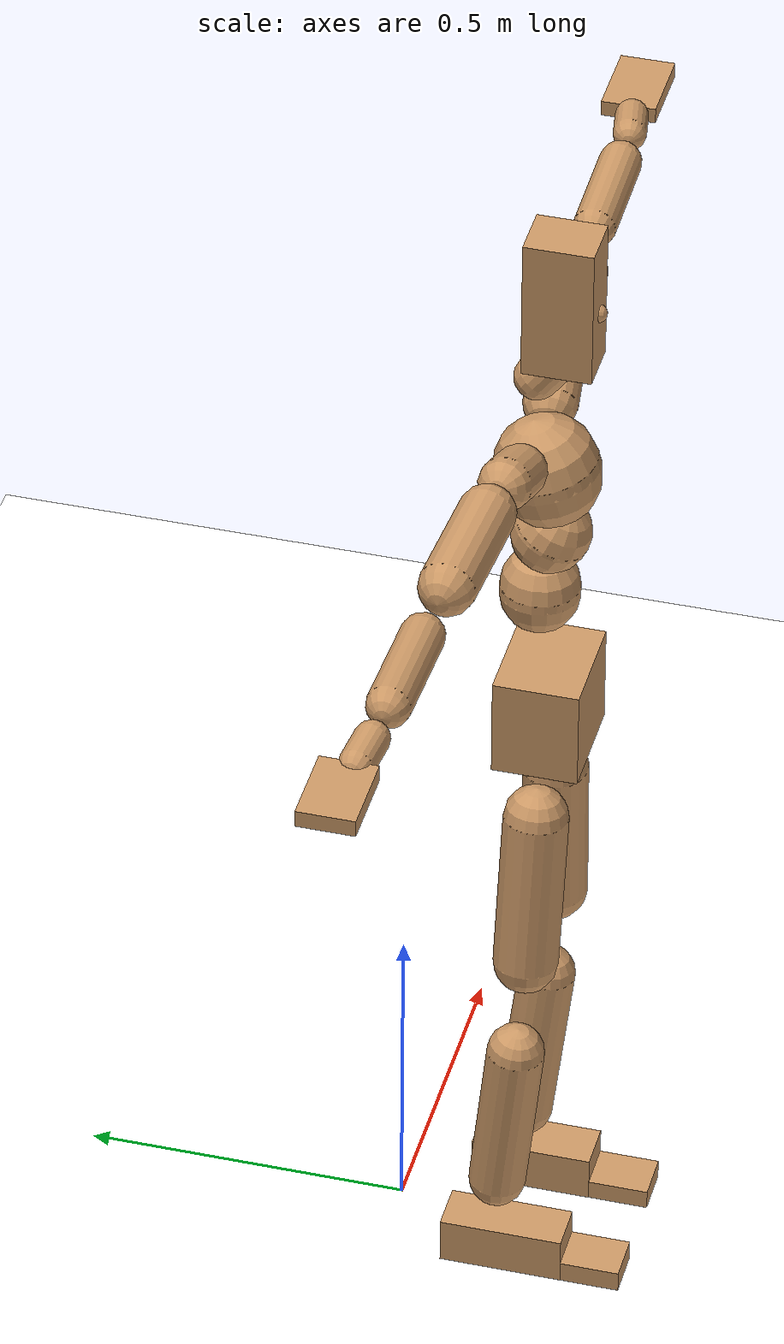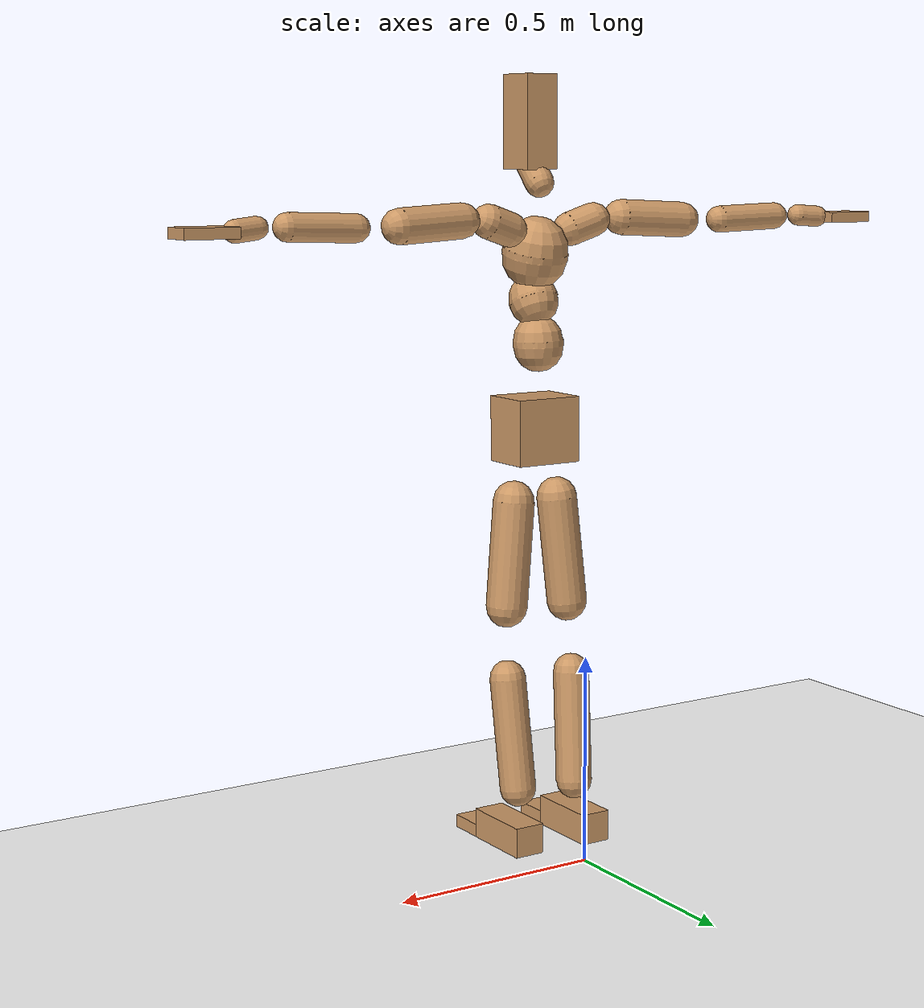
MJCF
<mujoco model="humanoid">
  <option integrator="implicitfast" />

  <visual>
    <global offwidth="1280" offheight="960" />
    <headlight active="1" ambient="0.34 0.34 0.34" diffuse="0.5 0.5 0.5" />
  </visual>

  <default>
    <joint damping="2" stiffness="2" armature="0.01" limited="true" solimplimit="0 .99 .01" />
    <geom condim="1" friction="0.7 0.005 0.0001" solimp=".99 .99 .003" solref="0.015 1" margin="0.001" rgba="0.8 0.6 .4 1" />
    <default class="smplcontact">
      <geom condim="3" friction="1. 0.005 0.0001" solref="0.015 1" solimp="0.98 0.98 0.001" priority="1" />
    </default>
    <default class="stiff_medium">
      <joint stiffness="10" />
    </default>
    <default class="stiff_medium_higher">
      <joint stiffness="50" />
    </default>
    <default class="stiff_high">
      <joint stiffness="100" />
    </default>
  </default>

  <asset>
    <texture type="skybox" builtin="gradient" rgb1="0.99 0.99 0.99" rgb2="0.608 0.828 0.892" width="100" />
    <texture builtin="flat" height="1278" mark="cross" markrgb="1 1 1" name="texgeom" random="0.01" rgb1="0.8 0.6 0.4" rgb2="0.8 0.6 0.4" type="cube" width="127" />
    <texture name="texplane" type="2d" builtin="checker" markrgb="1 1 1" rgb1="0.756 0.772 0.76" rgb2="0.6 0.6 0.6" width="100" height="100" />
    <material name="MatPlane" reflectance="0.5" texture="texplane" texrepeat="1 1" texuniform="true" />
    <material name="geom" texture="texgeom" texuniform="true" />
  </asset>

  <worldbody>
    <light name="tracking_light" pos="0 0 7" dir="0 0 -1" directional="true" cutoff="100" exponent="1" diffuse="1 1 1" specular="0.1 0.1 0.1" mode="trackcom" />
    <camera name="back" pos="0 3 2.4" xyaxes="-1 0 0 0 -1 2" mode="trackcom" />
    <camera name="side" pos="-3 0 2.4" xyaxes="0 -1 0 1 0 2" mode="trackcom" />
    <camera name="front_side" pos="-2.8 -2.8 0.8" xyaxes="0.5 -0.5 0 0.1 0.1 1" mode="trackcom" />
    <geom condim="3" name="floor" pos="0 0 0" rgba="1 1 1 1" size="100 100 .2" type="plane" material="MatPlane" />
    <body name="Pelvis" pos="-0.0018 -0.2233 1.03431" euler="90 0 0">
      <site name="Pelvis" size="0.01" />
      <freejoint name="Pelvis" />
      <geom type="box" pos="0 -0.013236 -0.00432025" size="0.0839699 0.0789783 0.0651965" quat="1.0000 0.0000 0.0000 0.0000" density="3165.830099" name="Pelvis" />
      <body name="L_Hip" pos="0.0545923 -0.0999809 -0.0053414">
        <joint name="L_Hip_x" type="hinge" pos="0 0 0" axis="1 0 0" stiffness="10" range="-160.0 22.92" class="stiff_medium" damping="15" />
        <joint name="L_Hip_y" type="hinge" pos="0 0 0" axis="0 1 0" stiffness="10" range="-70.0 70.0" class="stiff_medium" damping="10" />
        <joint name="L_Hip_z" type="hinge" pos="0 0 0" axis="0 0 1" stiffness="10" range="-28.65 90.0" class="stiff_medium" damping="10" />
        <geom type="capsule" density="2040.816327" fromto="0.0077877 -0.0849013 -0.00101856 0.0309935 -0.339825 -0.00407493" size="0.0499872" name="L_Hip" />
        <body name="L_Knee" pos="0.0387812 -0.424726 -0.00509349">
          <joint name="L_Knee_x" type="hinge" pos="0 0 0" axis="1 0 0" range="-5.16 171.89" damping="8" />
          <joint name="L_Knee_y" type="hinge" pos="0 0 0" axis="0 1 0" range="-4.58 6.88" damping="8" />
          <joint name="L_Knee_z" type="hinge" pos="0 0 0" axis="0 0 1" range="-6.88 4.58" damping="8" />
          <geom type="capsule" density="1234.567901" fromto="-0.00306692 -0.0901037 -0.00986929 -0.0123492 -0.360423 -0.0396406" size="0.0439725" name="L_Knee" />
          <body name="L_Ankle" pos="-0.0154161 -0.450526 -0.0495099">
            <joint name="L_Ankle_x" type="hinge" pos="0 0 0" axis="1 0 0" range="-45.84 45.84" class="stiff_medium" damping="6" />
            <joint name="L_Ankle_y" type="hinge" pos="0 0 0" axis="0 1 0" range="-74.48 22.92" class="stiff_medium" damping="3" />
            <joint name="L_Ankle_z" type="hinge" pos="0 0 0" axis="0 0 1" range="-4.58 4.58" class="stiff_medium" damping="6" />
            <geom type="box" pos="0.0183021 -0.0187735 0.026604" size="0.0379396 0.0364472 0.0934439" quat="1.0000 0.0000 0.0000 0.0000" density="449.071558" name="L_Ankle" class="smplcontact" />
            <body name="L_Toe" pos="0.0207372 -0.0438309 0.131151">
              <joint name="L_Toe_x" type="hinge" pos="0 0 0" axis="1 0 0" range="-91.67 22.92" />
              <joint name="L_Toe_y" type="hinge" pos="0 0 0" axis="0 1 0" range="-4.58 4.58" />
              <joint name="L_Toe_z" type="hinge" pos="0 0 0" axis="0 0 1" range="-4.58 4.58" />
              <geom type="box" pos="-0.0023565 0.00432025 0.0272636" size="0.0375469 0.01571 0.0545273" quat="1.0000 0.0000 0.0000 0.0000" density="423.206892" name="L_Toe" class="smplcontact" />
            </body>
          </body>
        </body>
      </body>
      <body name="R_Hip" pos="-0.0531783 -0.0989964 -0.00337765">
        <joint name="R_Hip_x" type="hinge" pos="0 0 0" axis="1 0 0" stiffness="10" range="-160.0 22.92" class="stiff_medium" damping="15" />
        <joint name="R_Hip_y" type="hinge" pos="0 0 0" axis="0 1 0" stiffness="10" range="-70.0 70.0" class="stiff_medium" damping="10" />
        <joint name="R_Hip_z" type="hinge" pos="0 0 0" axis="0 0 1" stiffness="10" range="-90.0 28.65" class="stiff_medium" damping="10" />
        <geom type="capsule" density="2040.816327" fromto="-0.00869422 -0.0865996 -0.00202675 -0.0346168 -0.346504 -0.00802629" size="0.0492557" name="R_Hip" />
        <body name="R_Knee" pos="-0.043311 -0.433104 -0.010053">
          <joint name="R_Knee_x" type="hinge" pos="0 0 0" axis="1 0 0" range="-5.16 171.89" damping="8" />
          <joint name="R_Knee_y" type="hinge" pos="0 0 0" axis="0 1 0" range="-6.88 4.58" damping="8" />
          <joint name="R_Knee_z" type="hinge" pos="0 0 0" axis="0 0 1" range="-4.58 6.88" damping="8" />
          <geom type="capsule" density="1234.567901" fromto="0.00360162 -0.0902224 -0.00960206 0.0142423 -0.360768 -0.0382414" size="0.0439725" name="R_Knee" />
          <body name="R_Ankle" pos="0.0178439 -0.45099 -0.0478434">
            <joint name="R_Ankle_x" type="hinge" pos="0 0 0" axis="1 0 0" range="-45.84 45.84" class="stiff_medium" damping="6" />
            <joint name="R_Ankle_y" type="hinge" pos="0 0 0" axis="0 1 0" range="-22.92 74.48" class="stiff_medium" damping="3" />
            <joint name="R_Ankle_z" type="hinge" pos="0 0 0" axis="0 0 1" range="-4.58 4.58" class="stiff_medium" damping="6" />
            <geom type="box" pos="-0.0166526 -0.0136677 0.0281431" size="0.0379396 0.0375469 0.0950929" quat="1.0000 0.0000 0.0000 0.0000" density="434.700981" name="R_Ankle" class="smplcontact" />
            <body name="R_Toe" pos="-0.0199517 -0.0377825 0.135549">
              <joint name="R_Toe_x" type="hinge" pos="0 0 0" axis="1 0 0" range="-91.67 22.92" />
              <joint name="R_Toe_y" type="hinge" pos="0 0 0" axis="0 1 0" range="-4.58 4.58" />
              <joint name="R_Toe_z" type="hinge" pos="0 0 0" axis="0 0 1" range="-4.58 4.58" />
              <geom type="box" pos="0.0032991 0.00353475 0.024955" size="0.0376254 0.0169668 0.0541975" quat="1.0000 0.0000 0.0000 0.0000" density="407.384095" name="R_Toe" class="smplcontact" />
            </body>
          </body>
        </body>
      </body>
      <body name="Torso" pos="-0.00196375 0.119233 -0.0209729">
        <joint name="Torso_x" type="hinge" pos="0 0 0" axis="1 0 0" range="-25.78 57.3" class="stiff_medium" damping="15" />
        <joint name="Torso_y" type="hinge" pos="0 0 0" axis="0 1 0" range="-57.3 57.3" class="stiff_high" damping="20" />
        <joint name="Torso_z" type="hinge" pos="0 0 0" axis="0 0 1" range="-34.38 34.38" class="stiff_high" damping="20" />
        <geom type="capsule" density="2040.816327" fromto="0.00265165 0.0663451 0.00053033 0.00319723 0.0810757 0.000639446" size="0.0602511" name="Torso" />
        <body name="Spine" pos="0.00585002 0.14753 0.00117">
          <joint name="Spine_x" type="hinge" pos="0 0 0" axis="1 0 0" stiffness="10" range="-25.78 57.3" class="stiff_medium" damping="15" />
          <joint name="Spine_y" type="hinge" pos="0 0 0" axis="0 1 0" stiffness="10" range="-57.3 57.3" class="stiff_high" damping="8" />
          <joint name="Spine_z" type="hinge" pos="0 0 0" axis="0 0 1" stiffness="20" range="-34.38 34.38" class="stiff_high" damping="12" />
          <geom type="capsule" density="2040.816327" fromto="0.000685994 0.0259371 0.012508 0.00079511 0.0317203 0.0153451" size="0.0591542" name="Spine" />
          <body name="Chest" pos="0.0014811 0.0576574 0.0278531">
            <joint name="Chest_x" type="hinge" pos="0 0 0" axis="1 0 0" stiffness="10" range="-25.78 57.3" class="stiff_medium" damping="15" />
            <joint name="Chest_y" type="hinge" pos="0 0 0" axis="0 1 0" stiffness="10" range="-57.3 57.3" class="stiff_high" damping="8" />
            <joint name="Chest_z" type="hinge" pos="0 0 0" axis="0 0 1" stiffness="20" range="-34.38 34.38" class="stiff_high" damping="12" />
            <geom type="capsule" density="2040.816327" fromto="-0.000843954 0.0743941 -0.0189679 -0.00095307 0.0908706 -0.0232234" size="0.0785067" name="Chest" />
            <body name="Neck" pos="-0.00262354 0.232481 -0.0503719">
              <joint name="Neck_x" type="hinge" pos="0 0 0" axis="1 0 0" range="-28.65 57.3" class="stiff_medium_higher" damping="10" />
              <joint name="Neck_y" type="hinge" pos="0 0 0" axis="0 1 0" range="-40.11 40.11" class="stiff_medium_higher" damping="10" />
              <joint name="Neck_z" type="hinge" pos="0 0 0" axis="0 0 1" range="-40.11 40.11" class="stiff_medium_higher" damping="10" />
              <geom type="capsule" density="1000" fromto="0.00111003 0.0142959 0.0113164 0.00451798 0.0571702 0.0451761" size="0.0344178" name="Neck" />
              <body name="Head" pos="0.00570588 0.0714526 0.0564029">
                <joint name="Head_x" type="hinge" pos="0 0 0" axis="1 0 0" range="-28.65 57.3" class="stiff_medium_higher" damping="2" />
                <joint name="Head_y" type="hinge" pos="0 0 0" axis="0 1 0" range="-40.11 40.11" class="stiff_medium_higher" damping="2" />
                <joint name="Head_z" type="hinge" pos="0 0 0" axis="0 0 1" range="-40.11 40.11" class="stiff_medium_higher" damping="2" />
                <geom type="box" pos="-0.00287952 0.0836339 -0.00795296" size="0.0415474 0.110175 0.0521056" quat="1.0000 0.0000 0.0000 0.0000" density="1018.069894" name="Head" />
                <geom type="capsule" name="nose" size="0.013712 0.006856" pos="0 0.0668307 0.03428" quat="1 0 0 0" mass="0" contype="0" conaffinity="0" />
              </body>
            </body>
            <body name="L_Thorax" pos="0.0614915 0.13284 -0.0363997">
              <joint name="L_Thorax_x" type="hinge" pos="0 0 0" axis="1 0 0" range="-10.89 4.58" class="stiff_medium_higher" damping="20" />
              <joint name="L_Thorax_y" type="hinge" pos="0 0 0" axis="0 1 0" range="-28.65 17.19" class="stiff_medium_higher" damping="20" />
              <joint name="L_Thorax_z" type="hinge" pos="0 0 0" axis="0 0 1" range="-31.51 40.11" class="stiff_medium_higher" damping="20" />
              <geom type="capsule" density="1000" fromto="0.0199609 0.0066902 -0.00196385 0.0798411 0.0267599 -0.00777639" size="0.0410287" name="L_Thorax" />
              <body name="L_Shoulder" pos="0.099802 0.0334501 -0.00974024">
                <joint name="L_Shoulder_x" type="hinge" pos="0 0 0" axis="1 0 0" range="-97.4 97.4" class="stiff_medium" damping="6" />
                <joint name="L_Shoulder_y" type="hinge" pos="0 0 0" axis="0 1 0" range="-108.86 80.21" class="stiff_medium" damping="6" />
                <joint name="L_Shoulder_z" type="hinge" pos="0 0 0" axis="0 0 1" range="-97.4 85.94" class="stiff_medium" damping="6" />
                <geom type="capsule" density="1000" fromto="0.0578626 -0.00287724 -0.00613077 0.231559 -0.0113502 -0.024526" size="0.041391" name="L_Shoulder" />
                <body name="L_Elbow" pos="0.289421 -0.0142275 -0.0306568">
                  <joint name="L_Elbow_x" type="hinge" pos="0 0 0" axis="1 0 0" range="-17.19 4.58" damping="5" />
                  <joint name="L_Elbow_y" type="hinge" pos="0 0 0" axis="0 1 0" range="-180.0 17.19" damping="5" />
                  <joint name="L_Elbow_z" type="hinge" pos="0 0 0" axis="0 0 1" range="-100.84 4.58" damping="5" />
                  <geom type="capsule" density="1000" fromto="0.0555202 0.002006 -0.00023335 0.222304 0.00802627 -0.00101376" size="0.0324243" name="L_Elbow" />
                  <body name="L_Wrist" pos="0.277824 0.0100323 -0.00132717">
                    <joint name="L_Wrist_x" type="hinge" pos="0 0 0" axis="1 0 0" range="-180.0 22.92" />
                    <joint name="L_Wrist_y" type="hinge" pos="0 0 0" axis="0 1 0" range="-17.19 17.19" />
                    <joint name="L_Wrist_z" type="hinge" pos="0 0 0" axis="0 0 1" range="-22.92 22.92" />
                    <geom type="capsule" density="1000" fromto="0.0187287 -0.00179416 -0.00334442 0.0749179 -0.007257 -0.0133782" size="0.0254591" name="L_Wrist" class="smplcontact" />
                    <body name="L_Hand" pos="0.0936442 -0.00913099 -0.0166421">
                      <joint name="L_Hand_x" type="hinge" pos="0 0 0" axis="1 0 0" range="-17.19 17.19" />
                      <joint name="L_Hand_y" type="hinge" pos="0 0 0" axis="0 1 0" range="-51.57 51.57" />
                      <joint name="L_Hand_z" type="hinge" pos="0 0 0" axis="0 0 1" range="-91.67 91.67" />
                      <geom type="box" pos="0.0539284 0.0007855 -0.0045559" size="0.0639921 0.0124109 0.0422599" quat="1.0000 0.0000 0.0000 0.0000" density="400.552564" name="L_Hand" class="smplcontact" />
                    </body>
                  </body>
                </body>
              </body>
            </body>
            <body name="R_Thorax" pos="-0.0643373 0.130374 -0.0398753">
              <joint name="R_Thorax_x" type="hinge" pos="0 0 0" axis="1 0 0" range="-10.89 4.58" class="stiff_medium_higher" damping="20" />
              <joint name="R_Thorax_y" type="hinge" pos="0 0 0" axis="0 1 0" range="-17.19 28.65" class="stiff_medium_higher" damping="20" />
              <joint name="R_Thorax_z" type="hinge" pos="0 0 0" axis="0 0 1" range="-40.11 31.51" class="stiff_medium_higher" damping="20" />
              <geom type="capsule" density="1000" fromto="-0.0210559 0.00712829 -0.00198429 -0.0842261 0.028514 -0.00801617" size="0.0402412" name="R_Thorax" />
              <body name="R_Shoulder" pos="-0.105291 0.0357242 -0.0100014">
                <joint name="R_Shoulder_x" type="hinge" pos="0 0 0" axis="1 0 0" range="-97.4 97.4" class="stiff_medium" damping="6" />
                <joint name="R_Shoulder_y" type="hinge" pos="0 0 0" axis="0 1 0" range="-80.21 108.86" class="stiff_medium" damping="6" />
                <joint name="R_Shoulder_z" type="hinge" pos="0 0 0" axis="0 0 1" range="-85.94 97.4" class="stiff_medium" damping="6" />
                <geom type="capsule" density="1000" fromto="-0.0565253 -0.00299864 -0.00478182 -0.226319 -0.0119176 -0.0190521" size="0.0425119" name="R_Shoulder" />
                <body name="R_Elbow" pos="-0.282843 -0.0148361 -0.0238338">
                  <joint name="R_Elbow_x" type="hinge" pos="0 0 0" axis="1 0 0" range="-17.19 4.58" damping="5" />
                  <joint name="R_Elbow_y" type="hinge" pos="0 0 0" axis="0 1 0" range="-17.19 180.0" damping="5" />
                  <joint name="R_Elbow_z" type="hinge" pos="0 0 0" axis="0 0 1" range="-4.58 100.84" damping="5" />
                  <geom type="capsule" density="1000" fromto="-0.0569702 0.00176348 -0.00122682 -0.227656 0.00689186 -0.00490587" size="0.0326645" name="R_Elbow" />
                  <body name="R_Wrist" pos="-0.284627 0.00865536 -0.00621276">
                    <joint name="R_Wrist_x" type="hinge" pos="0 0 0" axis="1 0 0" range="-180.0 22.92" />
                    <joint name="R_Wrist_y" type="hinge" pos="0 0 0" axis="0 1 0" range="-17.19 17.19" />
                    <joint name="R_Wrist_z" type="hinge" pos="0 0 0" axis="0 0 1" range="-22.92 22.92" />
                    <geom type="capsule" density="1000" fromto="-0.0188419 -0.0013476 -0.00232955 -0.0754771 -0.0054726 -0.00924171" size="0.0260996" name="R_Wrist" class="smplcontact" />
                    <body name="R_Hand" pos="-0.0943152 -0.00681993 -0.0114907">
                      <joint name="R_Hand_x" type="hinge" pos="0 0 0" axis="1 0 0" range="-17.19 17.19" />
                      <joint name="R_Hand_y" type="hinge" pos="0 0 0" axis="0 1 0" range="-51.57 51.57" />
                      <joint name="R_Hand_z" type="hinge" pos="0 0 0" axis="0 0 1" range="-91.67 91.67" />
                      <geom type="box" pos="-0.0505374 -0.00070695 -0.00620545" size="0.0622419 0.0128822 0.0428883" quat="1.0000 0.0000 0.0000 0.0000" density="403.679611" name="R_Hand" class="smplcontact" />
                    </body>
                  </body>
                </body>
              </body>
            </body>
          </body>
        </body>
      </body>
    </body>
  </worldbody>
  <actuator>
    <general name="L_Hip_x" joint="L_Hip_x" biastype="affine" gainprm="287.33006409732246" biasprm="-215.3247604770444 -180 -2.0" ctrllimited="true" ctrlrange="-1 1" forcerange="-360 360" />
    <general name="L_Hip_y" joint="L_Hip_y" biastype="affine" gainprm="219.9114857512855" biasprm="0.0 -180 -2.0" ctrllimited="true" ctrlrange="-1 1" forcerange="-360 360" />
    <general name="L_Hip_z" joint="L_Hip_z" biastype="affine" gainprm="186.3749841742145" biasprm="96.3683546488669 -180 -2.0" ctrllimited="true" ctrlrange="-1 1" forcerange="-360 360" />
    <general name="L_Knee_x" joint="L_Knee_x" biastype="affine" gainprm="278.10948965903646" biasprm="261.8988715665131 -180 -2.0" ctrllimited="true" ctrlrange="-1 1" forcerange="-360 360" />
    <general name="L_Knee_y" joint="L_Knee_y" biastype="affine" gainprm="18.001325905069514" biasprm="3.612831551628262 -180 -2.0" ctrllimited="true" ctrlrange="-1 1" forcerange="-360 360" />
    <general name="L_Knee_z" joint="L_Knee_z" biastype="affine" gainprm="18.001325905069514" biasprm="-3.612831551628262 -180 -2.0" ctrllimited="true" ctrlrange="-1 1" forcerange="-360 360" />
    <general name="L_Ankle_x" joint="L_Ankle_x" biastype="affine" gainprm="72.00530362027807" biasprm="0.0 -90 -2.0" ctrllimited="true" ctrlrange="-1 1" forcerange="-180 180" />
    <general name="L_Ankle_y" joint="L_Ankle_y" biastype="affine" gainprm="76.49778111491148" biasprm="-40.49512930477244 -90 -2.0" ctrllimited="true" ctrlrange="-1 1" forcerange="-180 180" />
    <general name="L_Ankle_z" joint="L_Ankle_z" biastype="affine" gainprm="7.1942471767206255" biasprm="0.0 -90 -2.0" ctrllimited="true" ctrlrange="-1 1" forcerange="-180 180" />
    <general name="L_Toe_x" joint="L_Toe_x" biastype="affine" gainprm="71.99902043497087" biasprm="-43.19689898685965 -72 -0.8" ctrllimited="true" ctrlrange="-1 1" forcerange="-144 144" />
    <general name="L_Toe_y" joint="L_Toe_y" biastype="affine" gainprm="5.755397741376501" biasprm="0.0 -72 -0.8" ctrllimited="true" ctrlrange="-1 1" forcerange="-144 144" />
    <general name="L_Toe_z" joint="L_Toe_z" biastype="affine" gainprm="5.755397741376501" biasprm="0.0 -72 -0.8" ctrllimited="true" ctrlrange="-1 1" forcerange="-144 144" />
    <general name="R_Hip_x" joint="R_Hip_x" biastype="affine" gainprm="287.33006409732246" biasprm="-215.3247604770444 -180 -2.0" ctrllimited="true" ctrlrange="-1 1" forcerange="-360 360" />
    <general name="R_Hip_y" joint="R_Hip_y" biastype="affine" gainprm="219.9114857512855" biasprm="0.0 -180 -2.0" ctrllimited="true" ctrlrange="-1 1" forcerange="-360 360" />
    <general name="R_Hip_z" joint="R_Hip_z" biastype="affine" gainprm="186.3749841742145" biasprm="-96.3683546488669 -180 -2.0" ctrllimited="true" ctrlrange="-1 1" forcerange="-360 360" />
    <general name="R_Knee_x" joint="R_Knee_x" biastype="affine" gainprm="278.10948965903646" biasprm="261.8988715665131 -180 -2.0" ctrllimited="true" ctrlrange="-1 1" forcerange="-360 360" />
    <general name="R_Knee_y" joint="R_Knee_y" biastype="affine" gainprm="18.001325905069514" biasprm="-3.612831551628262 -180 -2.0" ctrllimited="true" ctrlrange="-1 1" forcerange="-360 360" />
    <general name="R_Knee_z" joint="R_Knee_z" biastype="affine" gainprm="18.001325905069514" biasprm="3.612831551628262 -180 -2.0" ctrllimited="true" ctrlrange="-1 1" forcerange="-360 360" />
    <general name="R_Ankle_x" joint="R_Ankle_x" biastype="affine" gainprm="72.00530362027807" biasprm="0.0 -90 -2.0" ctrllimited="true" ctrlrange="-1 1" forcerange="-180 180" />
    <general name="R_Ankle_y" joint="R_Ankle_y" biastype="affine" gainprm="76.49778111491148" biasprm="40.49512930477244 -90 -2.0" ctrllimited="true" ctrlrange="-1 1" forcerange="-180 180" />
    <general name="R_Ankle_z" joint="R_Ankle_z" biastype="affine" gainprm="7.1942471767206255" biasprm="0.0 -90 -2.0" ctrllimited="true" ctrlrange="-1 1" forcerange="-180 180" />
    <general name="R_Toe_x" joint="R_Toe_x" biastype="affine" gainprm="71.99902043497087" biasprm="-43.19689898685965 -72 -0.8" ctrllimited="true" ctrlrange="-1 1" forcerange="-144 144" />
    <general name="R_Toe_y" joint="R_Toe_y" biastype="affine" gainprm="5.755397741376501" biasprm="0.0 -72 -0.8" ctrllimited="true" ctrlrange="-1 1" forcerange="-144 144" />
    <general name="R_Toe_z" joint="R_Toe_z" biastype="affine" gainprm="5.755397741376501" biasprm="0.0 -72 -0.8" ctrllimited="true" ctrlrange="-1 1" forcerange="-144 144" />
    <general name="Torso_x" joint="Torso_x" biastype="affine" gainprm="174.00234510682668" biasprm="66.0153336274335 -240 -4.0" ctrllimited="true" ctrlrange="-1 1" forcerange="-360 360" />
    <general name="Torso_y" joint="Torso_y" biastype="affine" gainprm="240.0176787342602" biasprm="0.0 -240 -4.0" ctrllimited="true" ctrlrange="-1 1" forcerange="-360 360" />
    <general name="Torso_z" joint="Torso_z" biastype="affine" gainprm="144.01060724055614" biasprm="0.0 -240 -4.0" ctrllimited="true" ctrlrange="-1 1" forcerange="-360 360" />
    <general name="Spine_x" joint="Spine_x" biastype="affine" gainprm="174.00234510682668" biasprm="66.0153336274335 -240 -4.0" ctrllimited="true" ctrlrange="-1 1" forcerange="-360 360" />
    <general name="Spine_y" joint="Spine_y" biastype="affine" gainprm="240.0176787342602" biasprm="0.0 -240 -4.0" ctrllimited="true" ctrlrange="-1 1" forcerange="-360 360" />
    <general name="Spine_z" joint="Spine_z" biastype="affine" gainprm="144.01060724055614" biasprm="0.0 -240 -4.0" ctrllimited="true" ctrlrange="-1 1" forcerange="-360 360" />
    <general name="Chest_x" joint="Chest_x" biastype="affine" gainprm="174.00234510682668" biasprm="66.0153336274335 -240 -4.0" ctrllimited="true" ctrlrange="-1 1" forcerange="-360 360" />
    <general name="Chest_y" joint="Chest_y" biastype="affine" gainprm="240.0176787342602" biasprm="0.0 -240 -4.0" ctrllimited="true" ctrlrange="-1 1" forcerange="-360 360" />
    <general name="Chest_z" joint="Chest_z" biastype="affine" gainprm="144.01060724055614" biasprm="0.0 -240 -4.0" ctrllimited="true" ctrlrange="-1 1" forcerange="-360 360" />
    <general name="Neck_x" joint="Neck_x" biastype="affine" gainprm="27.00198885760427" biasprm="9.000662952534757 -36 -0.8" ctrllimited="true" ctrlrange="-1 1" forcerange="-72 72" />
    <general name="Neck_y" joint="Neck_y" biastype="affine" gainprm="25.20185626709732" biasprm="0.0 -36 -0.8" ctrllimited="true" ctrlrange="-1 1" forcerange="-72 72" />
    <general name="Neck_z" joint="Neck_z" biastype="affine" gainprm="25.20185626709732" biasprm="0.0 -36 -0.8" ctrllimited="true" ctrlrange="-1 1" forcerange="-72 72" />
    <general name="Head_x" joint="Head_x" biastype="affine" gainprm="18.001325905069514" biasprm="6.000441968356505 -24 -0.8" ctrllimited="true" ctrlrange="-1 1" forcerange="-48 48" />
    <general name="Head_y" joint="Head_y" biastype="affine" gainprm="16.801237511398213" biasprm="0.0 -24 -0.8" ctrllimited="true" ctrlrange="-1 1" forcerange="-48 48" />
    <general name="Head_z" joint="Head_z" biastype="affine" gainprm="16.801237511398213" biasprm="0.0 -24 -0.8" ctrllimited="true" ctrlrange="-1 1" forcerange="-48 48" />
    <general name="L_Thorax_x" joint="L_Thorax_x" biastype="affine" gainprm="16.200146117011364" biasprm="-6.6078165480505335 -120 -1.6" ctrllimited="true" ctrlrange="-1 1" forcerange="-240 240" />
    <general name="L_Thorax_y" joint="L_Thorax_y" biastype="affine" gainprm="48.00353574685204" biasprm="-12.00088393671301 -120 -1.6" ctrllimited="true" ctrlrange="-1 1" forcerange="-240 240" />
    <general name="L_Thorax_z" joint="L_Thorax_z" biastype="affine" gainprm="75.00028861670033" biasprm="9.00589894029074 -120 -1.6" ctrllimited="true" ctrlrange="-1 1" forcerange="-240 240" />
    <general name="L_Shoulder_x" joint="L_Shoulder_x" biastype="affine" gainprm="81.5976331892389" biasprm="0.0 -48 -1.6" ctrllimited="true" ctrlrange="-1 1" forcerange="-96 96" />
    <general name="L_Shoulder_y" joint="L_Shoulder_y" biastype="affine" gainprm="79.19745640189629" biasprm="-12.00088393671301 -48 -1.6" ctrllimited="true" ctrlrange="-1 1" forcerange="-96 96" />
    <general name="L_Shoulder_z" joint="L_Shoulder_z" biastype="affine" gainprm="76.79727961455369" biasprm="-4.800353574685214 -48 -1.6" ctrllimited="true" ctrlrange="-1 1" forcerange="-96 96" />
    <general name="L_Elbow_x" joint="L_Elbow_x" biastype="affine" gainprm="13.67849441372996" biasprm="-7.923096672353461 -72 -0.8" ctrllimited="true" ctrlrange="-1 1" forcerange="-144 144" />
    <general name="L_Elbow_y" joint="L_Elbow_y" biastype="affine" gainprm="123.89813107227425" biasprm="-102.29653998619085 -72 -0.8" ctrllimited="true" ctrlrange="-1 1" forcerange="-144 144" />
    <general name="L_Elbow_z" joint="L_Elbow_z" biastype="affine" gainprm="66.23733950828719" biasprm="-60.4819417669107 -72 -0.8" ctrllimited="true" ctrlrange="-1 1" forcerange="-144 144" />
    <general name="L_Wrist_x" joint="L_Wrist_x" biastype="affine" gainprm="21.24973270888136" biasprm="-16.449379134196157 -12 -0.8" ctrllimited="true" ctrlrange="-1 1" forcerange="-24 24" />
    <general name="L_Wrist_y" joint="L_Wrist_y" biastype="affine" gainprm="3.6002651810139037" biasprm="0.0 -12 -0.8" ctrllimited="true" ctrlrange="-1 1" forcerange="-24 24" />
    <general name="L_Wrist_z" joint="L_Wrist_z" biastype="affine" gainprm="4.800353574685205" biasprm="0.0 -12 -0.8" ctrllimited="true" ctrlrange="-1 1" forcerange="-24 24" />
    <general name="L_Hand_x" joint="L_Hand_x" biastype="affine" gainprm="3.6002651810139037" biasprm="0.0 -12 -0.8" ctrllimited="true" ctrlrange="-1 1" forcerange="-24 24" />
    <general name="L_Hand_y" joint="L_Hand_y" biastype="affine" gainprm="10.800795543041708" biasprm="0.0 -12 -0.8" ctrllimited="true" ctrlrange="-1 1" forcerange="-24 24" />
    <general name="L_Hand_z" joint="L_Hand_z" biastype="affine" gainprm="19.199319903638422" biasprm="0.0 -12 -0.8" ctrllimited="true" ctrlrange="-1 1" forcerange="-24 24" />
    <general name="R_Thorax_x" joint="R_Thorax_x" biastype="affine" gainprm="16.200146117011364" biasprm="-6.6078165480505335 -120 -1.6" ctrllimited="true" ctrlrange="-1 1" forcerange="-240 240" />
    <general name="R_Thorax_y" joint="R_Thorax_y" biastype="affine" gainprm="48.00353574685204" biasprm="12.000883936713002 -120 -1.6" ctrllimited="true" ctrlrange="-1 1" forcerange="-240 240" />
    <general name="R_Thorax_z" joint="R_Thorax_z" biastype="affine" gainprm="75.00028861670033" biasprm="-9.00589894029074 -120 -1.6" ctrllimited="true" ctrlrange="-1 1" forcerange="-240 240" />
    <general name="R_Shoulder_x" joint="R_Shoulder_x" biastype="affine" gainprm="81.5976331892389" biasprm="0.0 -48 -1.6" ctrllimited="true" ctrlrange="-1 1" forcerange="-96 96" />
    <general name="R_Shoulder_y" joint="R_Shoulder_y" biastype="affine" gainprm="79.19745640189629" biasprm="12.00088393671301 -48 -1.6" ctrllimited="true" ctrlrange="-1 1" forcerange="-96 96" />
    <general name="R_Shoulder_z" joint="R_Shoulder_z" biastype="affine" gainprm="76.79727961455369" biasprm="4.800353574685204 -48 -1.6" ctrllimited="true" ctrlrange="-1 1" forcerange="-96 96" />
    <general name="R_Elbow_x" joint="R_Elbow_x" biastype="affine" gainprm="13.67849441372996" biasprm="-7.923096672353461 -72 -0.8" ctrllimited="true" ctrlrange="-1 1" forcerange="-144 144" />
    <general name="R_Elbow_y" joint="R_Elbow_y" biastype="affine" gainprm="123.89813107227425" biasprm="102.29653998619085 -72 -0.8" ctrllimited="true" ctrlrange="-1 1" forcerange="-144 144" />
    <general name="R_Elbow_z" joint="R_Elbow_z" biastype="affine" gainprm="66.23733950828719" biasprm="60.481941766910694 -72 -0.8" ctrllimited="true" ctrlrange="-1 1" forcerange="-144 144" />
    <general name="R_Wrist_x" joint="R_Wrist_x" biastype="affine" gainprm="21.24973270888136" biasprm="-16.449379134196157 -12 -0.8" ctrllimited="true" ctrlrange="-1 1" forcerange="-24 24" />
    <general name="R_Wrist_y" joint="R_Wrist_y" biastype="affine" gainprm="3.6002651810139037" biasprm="0.0 -12 -0.8" ctrllimited="true" ctrlrange="-1 1" forcerange="-24 24" />
    <general name="R_Wrist_z" joint="R_Wrist_z" biastype="affine" gainprm="4.800353574685205" biasprm="0.0 -12 -0.8" ctrllimited="true" ctrlrange="-1 1" forcerange="-24 24" />
    <general name="R_Hand_x" joint="R_Hand_x" biastype="affine" gainprm="3.6002651810139037" biasprm="0.0 -12 -0.8" ctrllimited="true" ctrlrange="-1 1" forcerange="-24 24" />
    <general name="R_Hand_y" joint="R_Hand_y" biastype="affine" gainprm="10.800795543041708" biasprm="0.0 -12 -0.8" ctrllimited="true" ctrlrange="-1 1" forcerange="-24 24" />
    <general name="R_Hand_z" joint="R_Hand_z" biastype="affine" gainprm="19.199319903638422" biasprm="0.0 -12 -0.8" ctrllimited="true" ctrlrange="-1 1" forcerange="-24 24" />
  </actuator>
  <contact>
    <exclude body1="Torso" body2="Chest" />
    <exclude body1="Head" body2="Chest" />
    <exclude body1="R_Knee" body2="R_Toe" />
    <exclude body1="R_Knee" body2="L_Ankle" />
    <exclude body1="R_Knee" body2="L_Toe" />
    <exclude body1="L_Knee" body2="L_Toe" />
    <exclude body1="L_Knee" body2="R_Ankle" />
    <exclude body1="L_Knee" body2="R_Toe" />
    <exclude body1="L_Shoulder" body2="Chest" />
    <exclude body1="R_Shoulder" body2="Chest" />
  </contact>
  <sensor>
    <framelinvel name="sensor_Pelvis_framelinvel" objtype="xbody" objname="Pelvis" />
    <framelinvel name="sensor_L_Hip_framelinvel" objtype="xbody" objname="L_Hip" />
    <framelinvel name="sensor_L_Knee_framelinvel" objtype="xbody" objname="L_Knee" />
    <framelinvel name="sensor_L_Ankle_framelinvel" objtype="xbody" objname="L_Ankle" />
    <framelinvel name="sensor_L_Toe_framelinvel" objtype="xbody" objname="L_Toe" />
    <framelinvel name="sensor_R_Hip_framelinvel" objtype="xbody" objname="R_Hip" />
    <framelinvel name="sensor_R_Knee_framelinvel" objtype="xbody" objname="R_Knee" />
    <framelinvel name="sensor_R_Ankle_framelinvel" objtype="xbody" objname="R_Ankle" />
    <framelinvel name="sensor_R_Toe_framelinvel" objtype="xbody" objname="R_Toe" />
    <framelinvel name="sensor_Torso_framelinvel" objtype="xbody" objname="Torso" />
    <framelinvel name="sensor_Spine_framelinvel" objtype="xbody" objname="Spine" />
    <framelinvel name="sensor_Chest_framelinvel" objtype="xbody" objname="Chest" />
    <framelinvel name="sensor_Neck_framelinvel" objtype="xbody" objname="Neck" />
    <framelinvel name="sensor_Head_framelinvel" objtype="xbody" objname="Head" />
    <framelinvel name="sensor_L_Thorax_framelinvel" objtype="xbody" objname="L_Thorax" />
    <framelinvel name="sensor_L_Shoulder_framelinvel" objtype="xbody" objname="L_Shoulder" />
    <framelinvel name="sensor_L_Elbow_framelinvel" objtype="xbody" objname="L_Elbow" />
    <framelinvel name="sensor_L_Wrist_framelinvel" objtype="xbody" objname="L_Wrist" />
    <framelinvel name="sensor_L_Hand_framelinvel" objtype="xbody" objname="L_Hand" />
    <framelinvel name="sensor_R_Thorax_framelinvel" objtype="xbody" objname="R_Thorax" />
    <framelinvel name="sensor_R_Shoulder_framelinvel" objtype="xbody" objname="R_Shoulder" />
    <framelinvel name="sensor_R_Elbow_framelinvel" objtype="xbody" objname="R_Elbow" />
    <framelinvel name="sensor_R_Wrist_framelinvel" objtype="xbody" objname="R_Wrist" />
    <framelinvel name="sensor_R_Hand_framelinvel" objtype="xbody" objname="R_Hand" />
    <frameangvel name="sensor_Pelvis_frameangvel" objtype="xbody" objname="Pelvis" />
    <frameangvel name="sensor_L_Hip_frameangvel" objtype="xbody" objname="L_Hip" />
    <frameangvel name="sensor_L_Knee_frameangvel" objtype="xbody" objname="L_Knee" />
    <frameangvel name="sensor_L_Ankle_frameangvel" objtype="xbody" objname="L_Ankle" />
    <frameangvel name="sensor_L_Toe_frameangvel" objtype="xbody" objname="L_Toe" />
    <frameangvel name="sensor_R_Hip_frameangvel" objtype="xbody" objname="R_Hip" />
    <frameangvel name="sensor_R_Knee_frameangvel" objtype="xbody" objname="R_Knee" />
    <frameangvel name="sensor_R_Ankle_frameangvel" objtype="xbody" objname="R_Ankle" />
    <frameangvel name="sensor_R_Toe_frameangvel" objtype="xbody" objname="R_Toe" />
    <frameangvel name="sensor_Torso_frameangvel" objtype="xbody" objname="Torso" />
    <frameangvel name="sensor_Spine_frameangvel" objtype="xbody" objname="Spine" />
    <frameangvel name="sensor_Chest_frameangvel" objtype="xbody" objname="Chest" />
    <frameangvel name="sensor_Neck_frameangvel" objtype="xbody" objname="Neck" />
    <frameangvel name="sensor_Head_frameangvel" objtype="xbody" objname="Head" />
    <frameangvel name="sensor_L_Thorax_frameangvel" objtype="xbody" objname="L_Thorax" />
    <frameangvel name="sensor_L_Shoulder_frameangvel" objtype="xbody" objname="L_Shoulder" />
    <frameangvel name="sensor_L_Elbow_frameangvel" objtype="xbody" objname="L_Elbow" />
    <frameangvel name="sensor_L_Wrist_frameangvel" objtype="xbody" objname="L_Wrist" />
    <frameangvel name="sensor_L_Hand_frameangvel" objtype="xbody" objname="L_Hand" />
    <frameangvel name="sensor_R_Thorax_frameangvel" objtype="xbody" objname="R_Thorax" />
    <frameangvel name="sensor_R_Shoulder_frameangvel" objtype="xbody" objname="R_Shoulder" />
    <frameangvel name="sensor_R_Elbow_frameangvel" objtype="xbody" objname="R_Elbow" />
    <frameangvel name="sensor_R_Wrist_frameangvel" objtype="xbody" objname="R_Wrist" />
    <frameangvel name="sensor_R_Hand_frameangvel" objtype="xbody" objname="R_Hand" />
    <subtreelinvel name="Chest_subtreelinvel" body="Chest" />
    <gyro name="Pelvis_gyro" site="Pelvis" />
  </sensor>
</mujoco>
